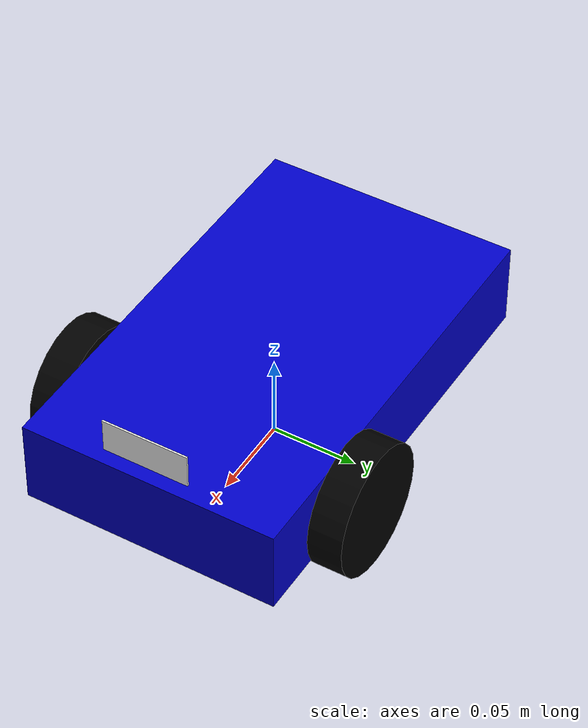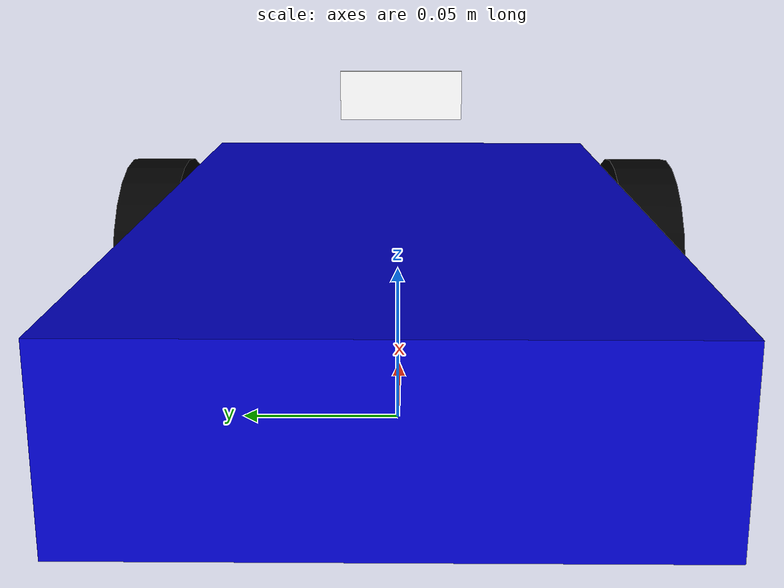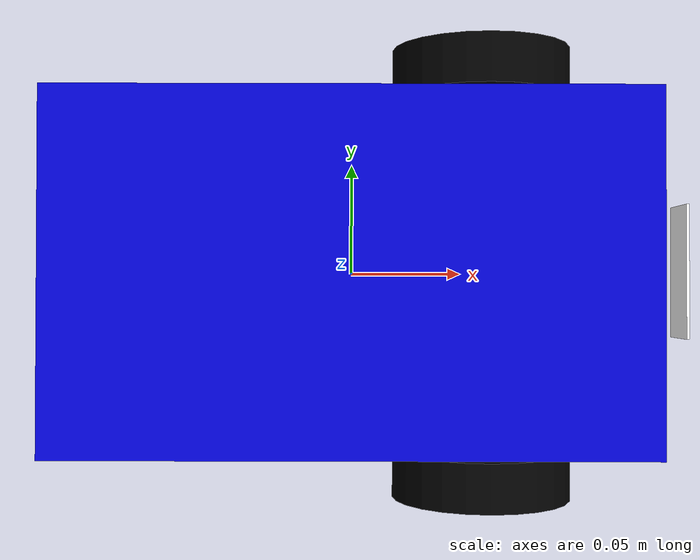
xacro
<?xml version="1.0"?>
<robot name="physics" xmlns:xacro="http://ros.org/wiki/xacro">

  <xacro:property name="base_footprint_radius" value="0.001" /> <!-- base_footprint 半径  -->
  <!-- 底盘 -->
  <link name="base_footprint">
    <visual>
      <geometry>
        <sphere radius="${base_footprint_radius}" />
      </geometry>
    </visual>
  </link>
  <!-- 属性封装 -->
  <material name="blue">
    <color rgba="0 0 0.8 1" />
  </material>
  <material name="black">
    <color rgba="0 0 0 1" />
  </material>
  <material name="white">
    <color rgba="1 1 1 1" />
  </material>
  <material name="yellow">
    <color rgba="1 1 0 1" />
  </material>
  <!-- 圆柱惯性矩阵 -->
  <xacro:macro name="cylinder_inertial_matrix" params="m r h">
    <inertial>
      <mass value="${m}" />
      <inertia ixx="${m*(3*r*r+h*h)/12}" ixy="0" ixz="0" iyy="${m*(3*r*r+h*h)/12}" iyz="0" izz="${m*r*r/2}" />
    </inertial>
  </xacro:macro>
  <!-- 立方体惯性矩阵 -->
  <xacro:macro name="Box_inertial_matrix" params="m l w h">
    <inertial>
      <mass value="${m}" />
      <inertia ixx="${m*(h*h + l*l)/12}" ixy="0" ixz="0" iyy="${m*(w*w + l*l)/12}" iyz="0" izz="${m*(w*w + h*h)/12}" />
    </inertial>
  </xacro:macro>

  <!-- 车身属性 -->
  <xacro:property name="bodywidth" value="0.15" />
  <xacro:property name="bodylen" value="0.25" />
  <xacro:property name="bodyheight" value="0.05" />
  <xacro:property name="earth_space" value="0.02" /> <!-- 离地间距 -->
  <xacro:property name="PI" value="3.1415927" />

  <!-- 车身 -->
  <link name="base_link">
    <visual>
      <geometry>
        <box size="${bodylen} ${bodywidth} ${bodyheight}" />
      </geometry>
      <origin xyz="0 0 0" rpy="0 0 0" />
      <material name="blue" />
    </visual>
    <collision>
      <geometry>
        <box size="${bodylen} ${bodywidth} ${bodyheight}" />
      </geometry>
    </collision>
    <xacro:Box_inertial_matrix m="5" l="${bodylen}" w="${bodywidth}" h="${bodyheight}" />
  </link>
  <joint name="base_link2base_footprint" type="fixed">
    <parent link="base_footprint" />
    <child link="base_link" />
    <origin xyz="0 0 ${earth_space + bodyheight / 2 }" />
  </joint>
  <!-- 车轮 -->
  <!-- 车轮属性 -->
  <xacro:property name="wheel_radius" value="0.0375" />
  <xacro:property name="wheel_length" value="0.02" />
  <xacro:property name="during_wheel" value="0.11" />
  <!-- 轮宏实现 -->
  <xacro:macro name="add_wheels" params="name flag front">
    <link name="${name}_wheel">
      <visual>
        <geometry>
          <cylinder radius="${wheel_radius}" length="${wheel_length}" />
        </geometry>
        <origin xyz="0.0 0.0 0.0" rpy="0.0 0.0 0.0" />
        <material name="black" />
      </visual>
      <collision>
        <geometry>
          <cylinder length="${wheel_length}" radius="${wheel_radius}" />
        </geometry>
      </collision>
      <xacro:cylinder_inertial_matrix m="2" r="${wheel_radius}" h="${wheel_length}" />

    </link>
    <joint name="${name}_wheel2base_link" type="continuous">
      <parent link="base_link" />
      <child link="${name}_wheel" />
      <origin xyz="${front * during_wheel/2} ${flag * (bodywidth/2+wheel_length/2)} ${-(earth_space + bodyheight / 2 - wheel_radius) } " rpy="${-PI / 2} 0.0 0.0"/>
      <axis xyz="0 0 1" />
    </joint>
  </xacro:macro>
  <xacro:add_wheels name="left_front" flag="1" front="1"/>
  <xacro:add_wheels name="right_front" flag="-1" front="1"/>
  <!-- 传感器属性 -->
  <xacro:property name="gps_len" value="0.03" />
  <xacro:property name="imu_len" value="0.01" />
  <xacro:property name="imu_width" value="0.02" />
  <!-- 传感器宏实现 -->
  <!-- 超声波 -->
  <link name="sonar_link">
    <visual>
      <geometry>
        <box size="0.001 0.05 0.02" />
      </geometry>
      <origin xyz="0 0 0" rpy="0 0 0" />
      <material name="white" />
    </visual>
    <collision>
      <geometry>
        <box size="0.001 0.05 0.02" />
      </geometry>
    </collision>
    <xacro:Box_inertial_matrix m="0.5" l="0.02" w="0.05" h="0.001" />
  </link>
  <joint name="sonar_link2base_link" type="fixed">
    <parent link="base_link" />
    <child link="sonar_link" />
    <origin xyz="${bodylen/2 - 0.001} 0 ${earth_space + bodyheight / 2 }" rpy="0 0 0"/>
  </joint>
  <!-- Drive controller -->
  <gazebo>
    <plugin name="turtlebot3_waffle_pi_controller" filename="libgazebo_ros_diff_drive.so">
      <commandTopic>cmd_vel</commandTopic>
      <odometryTopic>odom</odometryTopic>
      <odometryFrame>odom</odometryFrame>
      <odometrySource>world</odometrySource>
      <publishOdomTF>true</publishOdomTF>
      <robotBaseFrame>base_footprint</robotBaseFrame>
      <publishWheelTF>false</publishWheelTF>
      <publishTf>true</publishTf>
      <publishWheelJointState>true</publishWheelJointState>
      <legacyMode>false</legacyMode>
      <updateRate>30</updateRate>
      <leftJoint>left_front_wheel2base_link</leftJoint>
      <rightJoint>right_front_wheel2base_link</rightJoint>
      <wheelSeparation>${bodywidth+wheel_length/2}</wheelSeparation>
      <wheelDiameter>${wheel_radius*2}</wheelDiameter>
      <wheelAcceleration>1</wheelAcceleration>
      <wheelTorque>10</wheelTorque>
      <rosDebugLevel>na</rosDebugLevel>
    </plugin>
  </gazebo>

  <!-- ros_control plugin -->
  <gazebo>
    <plugin name="gazebo_ros_control" filename="libgazebo_ros_control.so">
      <robotNamespace>/robot1</robotNamespace>
      <legacyModeNS>true</legacyModeNS>
    </plugin>
  </gazebo>
  <!-- add sonar info......................................  -->
  <gazebo reference="sonar_link">
    <sensor type="ray" name="sonar">
      <always_on>true</always_on>
      <update_rate>0.1</update_rate>
      <pose>0 0 0 0 0 0</pose>
      <visualize>false</visualize>
      <ray>
        <scan>
          <horizontal>
            <samples>2</samples>
            <resolution>1</resolution>
            <min_angle>-4.71</min_angle>
            <max_angle>1.570796</max_angle>
          </horizontal>
          <vertical>
            <samples>2</samples>
            <resolution>1</resolution>
            <min_angle>-0.01</min_angle>
            <max_angle> 0.05</max_angle>
          </vertical>
        </scan>
        <range>
          <min>0.2</min>
          <max>0.8</max>
          <resolution>0.01</resolution>
        </range>
      </ray>
      <plugin name="gazebo_sonar_controller" filename="libhector_gazebo_ros_sonar.so">
        <gaussianNoise>0.005</gaussianNoise>
        <topicName>sonar/scan</topicName>
        <frameId>sonar_link</frameId>
      </plugin>
    </sensor>
  </gazebo>
  <!-- GPS -->
  <gazebo>
    <plugin name="gps" filename="libhector_gazebo_ros_gps.so">
      <updateRate>10.0</updateRate>
      <topicName>gps/fix</topicName>
      <gaussianNoise>0.0 0.0 0.0</gaussianNoise>
      <offset>0 0 0</offset>
      <velocityGaussianNoise>0 0 0</velocityGaussianNoise>
      <referenceLatitude>36.003412</referenceLatitude>
      <referenceLongitude>139.392960</referenceLongitude>
      <referenceHeading>90</referenceHeading>
      <referenceAltitude>0</referenceAltitude>
      <frameId>gps_link</frameId>
      <bodyName>base_link</bodyName>
    </plugin>
  </gazebo>

  <!-- IMU -->
  <gazebo>
    <plugin name="imu_plugin" filename="libgazebo_ros_imu.so">
      <alwaysOn>true</alwaysOn>
      <bodyName>base_link</bodyName>
      <frameName>imu_link</frameName>
      <topicName>imu/data</topicName>
      <serviceName>imu_service</serviceName>
      <gaussianNoise>0.0</gaussianNoise>
      <updateRate>0</updateRate>
      <imu>
        <noise>
          <type>gaussian</type>
          <rate>
            <mean>0.0</mean>
            <stddev>2e-4</stddev>
            <bias_mean>0.0000075</bias_mean>
            <bias_stddev>0.0000008</bias_stddev>
          </rate>
          <accel>
            <mean>0.0</mean>
            <stddev>1.7e-2</stddev>
            <bias_mean>0.1</bias_mean>
            <bias_stddev>0.001</bias_stddev>
          </accel>
        </noise>
      </imu>
    </plugin>
  </gazebo>

</robot>
